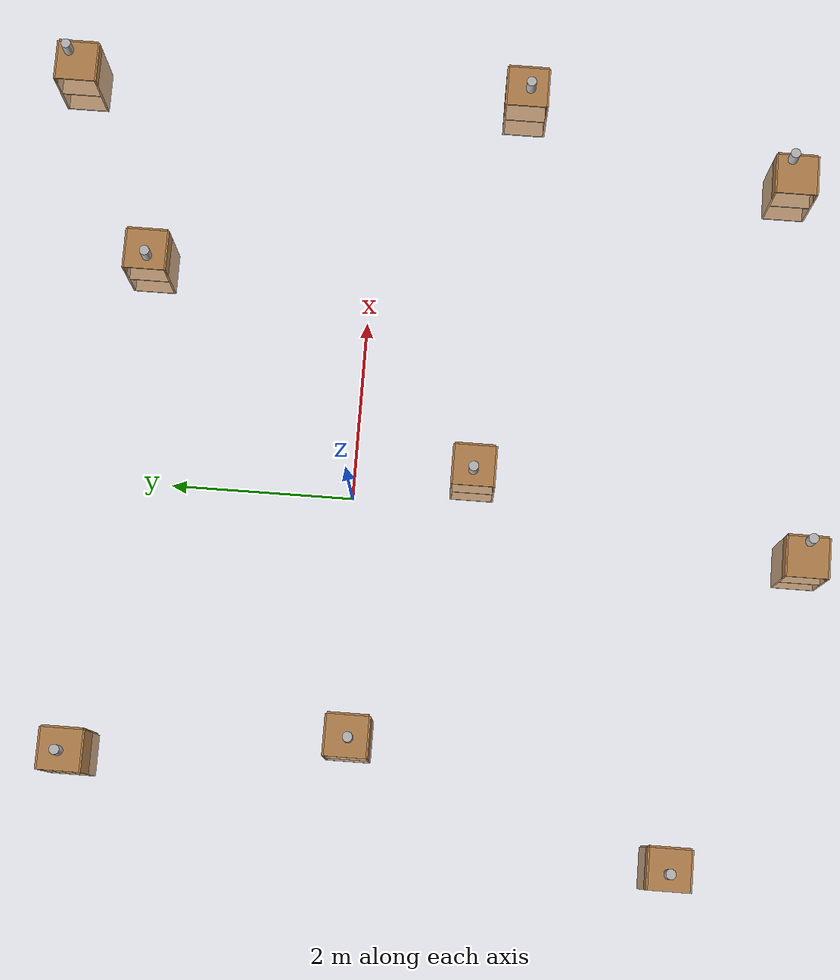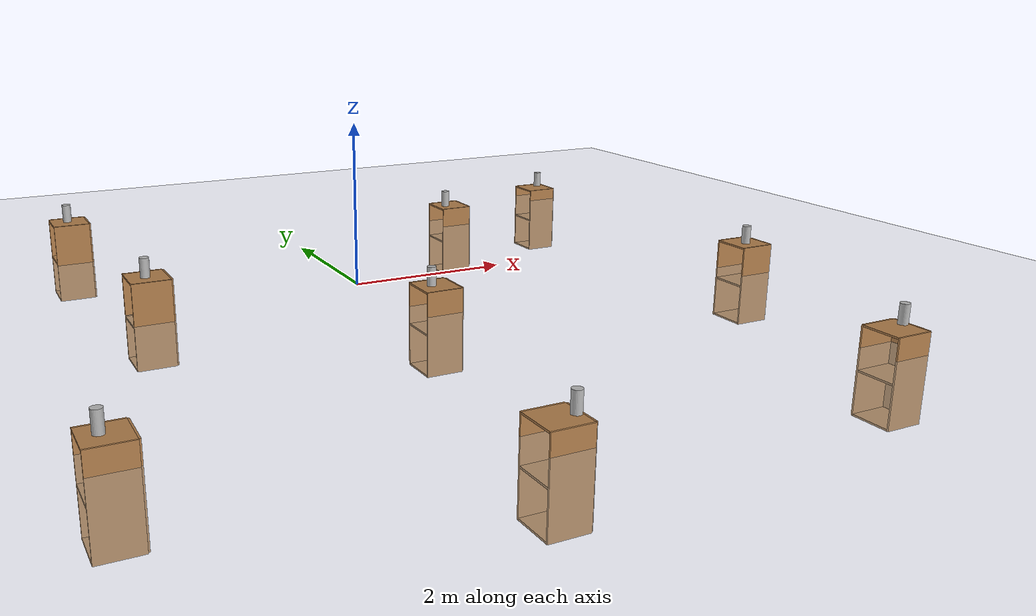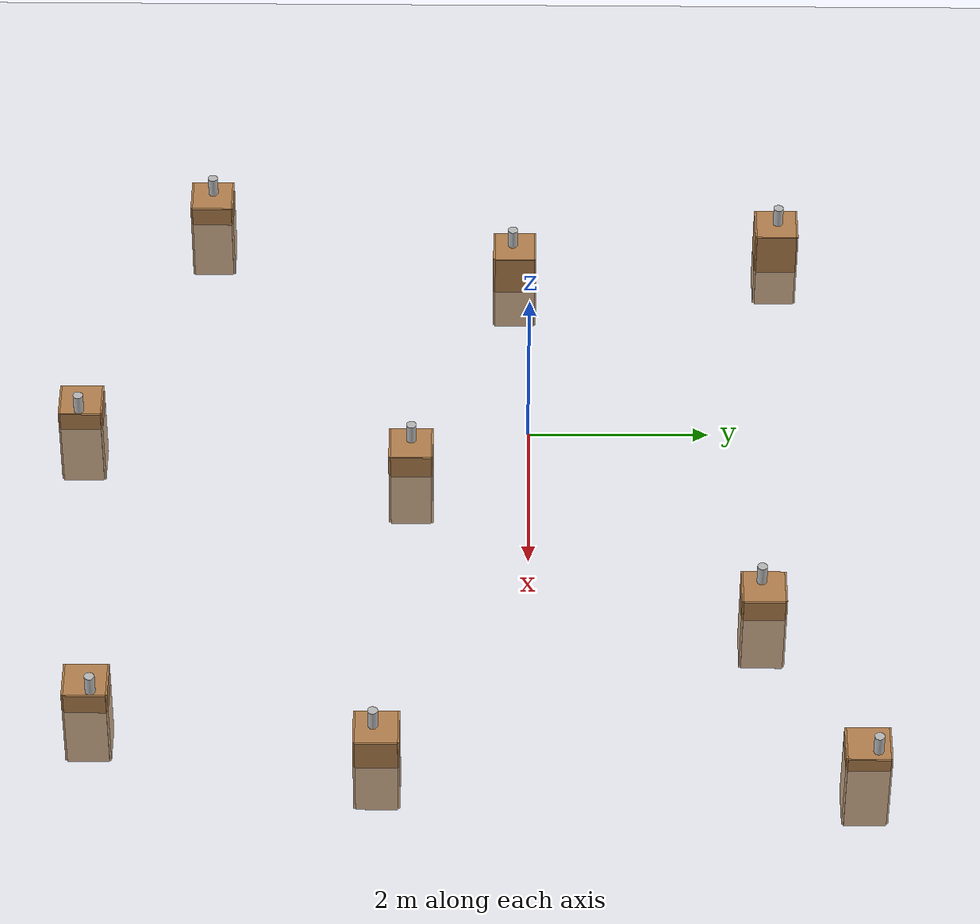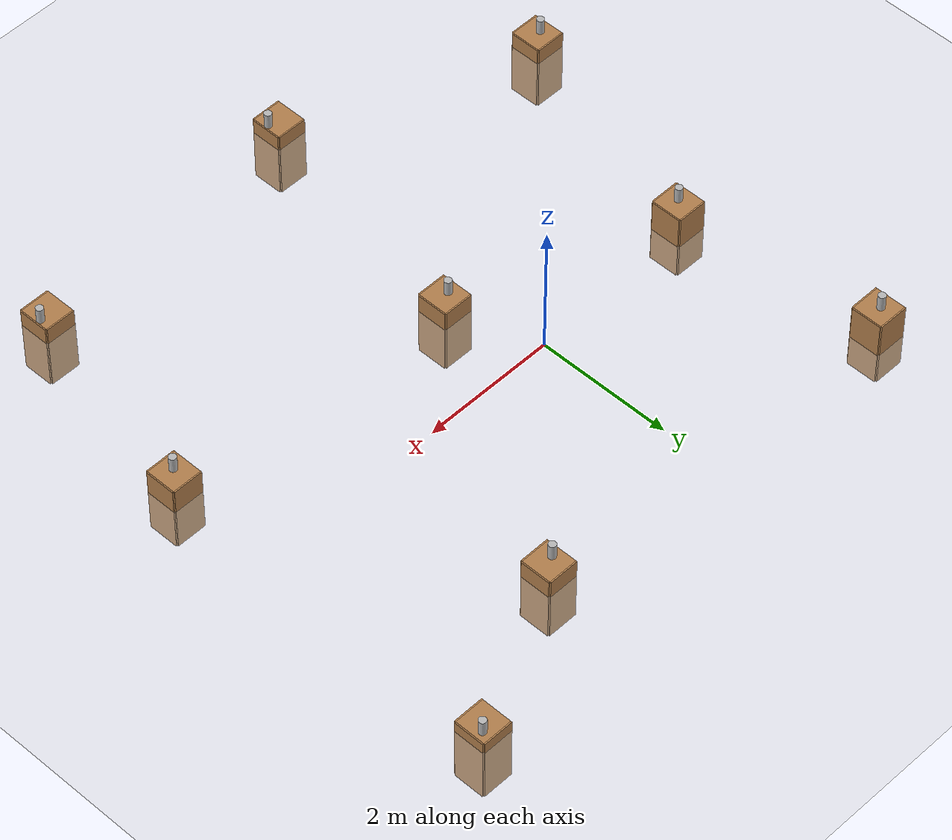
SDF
<sdf version="1.6">
 <world name="default">
  <light name="sun" type="directional">
   <pose>0 0 10 0 -0 0</pose>
   <diffuse>0.8 0.8 0.8 1</diffuse>
   <specular>0.2 0.2 0.2 1</specular>
   <attenuation>
    <range>1000</range>
    <constant>0.9</constant>
    <linear>0.01</linear>
    <quadratic>0.001</quadratic>
   </attenuation>
   <direction>-0.5 0.1 -0.9</direction>
  </light>
  <model name="ground_plane">
   <static>1</static>
   <link name="link">
    <collision name="collision">
     <geometry><plane><normal>0 0 1</normal><size>100 100</size></plane></geometry>
     <surface>
      <contact><collide_bitmask>65535</collide_bitmask></contact>
      <friction><ode><mu>100</mu><mu2>50</mu2></ode></friction>
     </surface>
    </collision>
    <visual name="visual">
     <cast_shadows>0</cast_shadows>
     <geometry><plane><normal>0 0 1</normal><size>100 100</size></plane></geometry>
     <material>
      <script><uri>file://media/materials/scripts/gazebo.material</uri><name>Gazebo/Grey</name></script>
     </material>
    </visual>
   </link>
  </model>
  <gravity>0 0 -9.8</gravity>
  <magnetic_field>6e-06 2.3e-05 -4.2e-05</magnetic_field>
  <atmosphere type="adiabatic"/>
  <physics name="default_physics" default="0" type="ode">
   <max_step_size>0.001</max_step_size>
   <real_time_factor>1</real_time_factor>
   <real_time_update_rate>1000</real_time_update_rate>
  </physics>
  <scene><ambient>0.4 0.4 0.4 1</ambient><background>0.7 0.7 0.7 1</background><shadows>1</shadows></scene>
  <audio><device>default</device></audio>
  <spherical_coordinates>
   <surface_model>EARTH_WGS84</surface_model>
   <latitude_deg>0</latitude_deg>
   <longitude_deg>0</longitude_deg>
   <elevation>0</elevation>
   <heading_deg>0</heading_deg>
  </spherical_coordinates>
  <model name="cabinet">
   <static>1</static>
   <link name="cabinet_bottom_plate">
    <inertial>
     <pose>0 0 -1 0 -0 0</pose>
     <inertia><ixx>2.05</ixx><ixy>0</ixy><ixz>0</ixz><iyy>2.05</iyy><iyz>0</iyz><izz>2.05</izz></inertia>
     <mass>25</mass>
    </inertial>
    <collision name="cabinet_bottom_plate_geom">
     <pose>0 0 0.01 0 -0 0</pose>
     <geometry><box><size>0.45 0.45 0.02</size></box></geometry>
    </collision>
    <visual name="cabinet_bottom_plate_geom_visual">
     <pose>0 0 0.01 0 -0 0</pose>
     <geometry><box><size>0.45 0.45 0.02</size></box></geometry>
     <material>
      <script><uri>file://media/materials/scripts/gazebo.material</uri><name>Gazebo/Wood</name></script>
     </material>
    </visual>
    <collision name="cabinet_bottom_plate_geom_cabinet_back_plate">
     <pose>0.235 0 0.51 0 -0 0</pose>
     <geometry><box><size>0.02 0.45 1.02</size></box></geometry>
    </collision>
    <visual name="cabinet_bottom_plate_geom_cabinet_back_plate_visual">
     <pose>0.235 0 0.51 0 -0 0</pose>
     <geometry><box><size>0.02 0.45 1.02</size></box></geometry>
     <material>
      <script><uri>file://media/materials/scripts/gazebo.material</uri><name>Gazebo/Wood</name></script>
     </material>
    </visual>
    <collision name="cabinet_bottom_plate_geom_cabinet_left_plate">
     <pose>0 0.235 0.51 0 -0 0</pose>
     <geometry><box><size>0.45 0.02 1.02</size></box></geometry>
    </collision>
    <visual name="cabinet_bottom_plate_geom_cabinet_left_plate_visual">
     <pose>0 0.235 0.51 0 -0 0</pose>
     <geometry><box><size>0.45 0.02 1.02</size></box></geometry>
     <material>
      <script><uri>file://media/materials/scripts/gazebo.material</uri><name>Gazebo/Wood</name></script>
     </material>
    </visual>
    <collision name="cabinet_bottom_plate_geom_cabinet_middle_plate">
     <pose>0 0 0.51 0 -0 0</pose>
     <geometry><box><size>0.45 0.45 0.02</size></box></geometry>
    </collision>
    <visual name="cabinet_bottom_plate_geom_cabinet_middle_plate_visual">
     <pose>0 0 0.51 0 -0 0</pose>
     <geometry><box><size>0.45 0.45 0.02</size></box></geometry>
     <material>
      <script><uri>file://media/materials/scripts/gazebo.material</uri><name>Gazebo/Wood</name></script>
     </material>
    </visual>
    <collision name="cabinet_bottom_plate_geom_cabinet_right_plate">
     <pose>0 -0.235 0.51 0 -0 0</pose>
     <geometry><box><size>0.45 0.02 1.02</size></box></geometry>
    </collision>
    <visual name="cabinet_bottom_plate_geom_cabinet_right_plate_visual">
     <pose>0 -0.235 0.51 0 -0 0</pose>
     <geometry><box><size>0.45 0.02 1.02</size></box></geometry>
     <material>
      <script><uri>file://media/materials/scripts/gazebo.material</uri><name>Gazebo/Wood</name></script>
     </material>
    </visual>
    <collision name="cabinet_bottom_plate_geom_cabinet_top_plate">
     <pose>0 0 1.01 0 -0 0</pose>
     <geometry><box><size>0.45 0.45 0.02</size></box></geometry>
    </collision>
    <visual name="cabinet_bottom_plate_geom_cabinet_top_plate_visual">
     <pose>0 0 1.01 0 -0 0</pose>
     <geometry><box><size>0.45 0.45 0.02</size></box></geometry>
     <material>
      <script><uri>file://media/materials/scripts/gazebo.material</uri><name>Gazebo/Wood</name></script>
     </material>
    </visual>
   </link>
   <pose>0.438157 -1.30222 -0.742347 0 -0 0</pose>
  </model>
  <model name="cabinet_0">
   <static>1</static>
   <link name="cabinet_bottom_plate">
    <inertial>
     <pose>0 0 -1 0 -0 0</pose>
     <inertia><ixx>2.05</ixx><ixy>0</ixy><ixz>0</ixz><iyy>2.05</iyy><iyz>0</iyz><izz>2.05</izz></inertia>
     <mass>25</mass>
    </inertial>
    <collision name="cabinet_bottom_plate_geom">
     <pose>0 0 0.01 0 -0 0</pose>
     <geometry><box><size>0.45 0.45 0.02</size></box></geometry>
    </collision>
    <visual name="cabinet_bottom_plate_geom_visual">
     <pose>0 0 0.01 0 -0 0</pose>
     <geometry><box><size>0.45 0.45 0.02</size></box></geometry>
     <material>
      <script><uri>file://media/materials/scripts/gazebo.material</uri><name>Gazebo/Wood</name></script>
     </material>
    </visual>
    <collision name="cabinet_bottom_plate_geom_cabinet_back_plate">
     <pose>0.235 0 0.51 0 -0 0</pose>
     <geometry><box><size>0.02 0.45 1.02</size></box></geometry>
    </collision>
    <visual name="cabinet_bottom_plate_geom_cabinet_back_plate_visual">
     <pose>0.235 0 0.51 0 -0 0</pose>
     <geometry><box><size>0.02 0.45 1.02</size></box></geometry>
     <material>
      <script><uri>file://media/materials/scripts/gazebo.material</uri><name>Gazebo/Wood</name></script>
     </material>
    </visual>
    <collision name="cabinet_bottom_plate_geom_cabinet_left_plate">
     <pose>0 0.235 0.51 0 -0 0</pose>
     <geometry><box><size>0.45 0.02 1.02</size></box></geometry>
    </collision>
    <visual name="cabinet_bottom_plate_geom_cabinet_left_plate_visual">
     <pose>0 0.235 0.51 0 -0 0</pose>
     <geometry><box><size>0.45 0.02 1.02</size></box></geometry>
     <material>
      <script><uri>file://media/materials/scripts/gazebo.material</uri><name>Gazebo/Wood</name></script>
     </material>
    </visual>
    <collision name="cabinet_bottom_plate_geom_cabinet_middle_plate">
     <pose>0 0 0.51 0 -0 0</pose>
     <geometry><box><size>0.45 0.45 0.02</size></box></geometry>
    </collision>
    <visual name="cabinet_bottom_plate_geom_cabinet_middle_plate_visual">
     <pose>0 0 0.51 0 -0 0</pose>
     <geometry><box><size>0.45 0.45 0.02</size></box></geometry>
     <material>
      <script><uri>file://media/materials/scripts/gazebo.material</uri><name>Gazebo/Wood</name></script>
     </material>
    </visual>
    <collision name="cabinet_bottom_plate_geom_cabinet_right_plate">
     <pose>0 -0.235 0.51 0 -0 0</pose>
     <geometry><box><size>0.45 0.02 1.02</size></box></geometry>
    </collision>
    <visual name="cabinet_bottom_plate_geom_cabinet_right_plate_visual">
     <pose>0 -0.235 0.51 0 -0 0</pose>
     <geometry><box><size>0.45 0.02 1.02</size></box></geometry>
     <material>
      <script><uri>file://media/materials/scripts/gazebo.material</uri><name>Gazebo/Wood</name></script>
     </material>
    </visual>
    <collision name="cabinet_bottom_plate_geom_cabinet_top_plate">
     <pose>0 0 1.01 0 -0 0</pose>
     <geometry><box><size>0.45 0.45 0.02</size></box></geometry>
    </collision>
    <visual name="cabinet_bottom_plate_geom_cabinet_top_plate_visual">
     <pose>0 0 1.01 0 -0 0</pose>
     <geometry><box><size>0.45 0.45 0.02</size></box></geometry>
     <material>
      <script><uri>file://media/materials/scripts/gazebo.material</uri><name>Gazebo/Wood</name></script>
     </material>
    </visual>
   </link>
   <pose>-3.74569 -3.68274 -0.792957 0 -0 0</pose>
  </model>
  <model name="cabinet_1">
   <static>1</static>
   <link name="cabinet_bottom_plate">
    <inertial>
     <pose>0 0 -1 0 -0 0</pose>
     <inertia><ixx>2.05</ixx><ixy>0</ixy><ixz>0</ixz><iyy>2.05</iyy><iyz>0</iyz><izz>2.05</izz></inertia>
     <mass>25</mass>
    </inertial>
    <collision name="cabinet_bottom_plate_geom">
     <pose>0 0 0.01 0 -0 0</pose>
     <geometry><box><size>0.45 0.45 0.02</size></box></geometry>
    </collision>
    <visual name="cabinet_bottom_plate_geom_visual">
     <pose>0 0 0.01 0 -0 0</pose>
     <geometry><box><size>0.45 0.45 0.02</size></box></geometry>
     <material>
      <script><uri>file://media/materials/scripts/gazebo.material</uri><name>Gazebo/Wood</name></script>
     </material>
    </visual>
    <collision name="cabinet_bottom_plate_geom_cabinet_back_plate">
     <pose>0.235 0 0.51 0 -0 0</pose>
     <geometry><box><size>0.02 0.45 1.02</size></box></geometry>
    </collision>
    <visual name="cabinet_bottom_plate_geom_cabinet_back_plate_visual">
     <pose>0.235 0 0.51 0 -0 0</pose>
     <geometry><box><size>0.02 0.45 1.02</size></box></geometry>
     <material>
      <script><uri>file://media/materials/scripts/gazebo.material</uri><name>Gazebo/Wood</name></script>
     </material>
    </visual>
    <collision name="cabinet_bottom_plate_geom_cabinet_left_plate">
     <pose>0 0.235 0.51 0 -0 0</pose>
     <geometry><box><size>0.45 0.02 1.02</size></box></geometry>
    </collision>
    <visual name="cabinet_bottom_plate_geom_cabinet_left_plate_visual">
     <pose>0 0.235 0.51 0 -0 0</pose>
     <geometry><box><size>0.45 0.02 1.02</size></box></geometry>
     <material>
      <script><uri>file://media/materials/scripts/gazebo.material</uri><name>Gazebo/Wood</name></script>
     </material>
    </visual>
    <collision name="cabinet_bottom_plate_geom_cabinet_middle_plate">
     <pose>0 0 0.51 0 -0 0</pose>
     <geometry><box><size>0.45 0.45 0.02</size></box></geometry>
    </collision>
    <visual name="cabinet_bottom_plate_geom_cabinet_middle_plate_visual">
     <pose>0 0 0.51 0 -0 0</pose>
     <geometry><box><size>0.45 0.45 0.02</size></box></geometry>
     <material>
      <script><uri>file://media/materials/scripts/gazebo.material</uri><name>Gazebo/Wood</name></script>
     </material>
    </visual>
    <collision name="cabinet_bottom_plate_geom_cabinet_right_plate">
     <pose>0 -0.235 0.51 0 -0 0</pose>
     <geometry><box><size>0.45 0.02 1.02</size></box></geometry>
    </collision>
    <visual name="cabinet_bottom_plate_geom_cabinet_right_plate_visual">
     <pose>0 -0.235 0.51 0 -0 0</pose>
     <geometry><box><size>0.45 0.02 1.02</size></box></geometry>
     <material>
      <script><uri>file://media/materials/scripts/gazebo.material</uri><name>Gazebo/Wood</name></script>
     </material>
    </visual>
    <collision name="cabinet_bottom_plate_geom_cabinet_top_plate">
     <pose>0 0 1.01 0 -0 0</pose>
     <geometry><box><size>0.45 0.45 0.02</size></box></geometry>
    </collision>
    <visual name="cabinet_bottom_plate_geom_cabinet_top_plate_visual">
     <pose>0 0 1.01 0 -0 0</pose>
     <geometry><box><size>0.45 0.45 0.02</size></box></geometry>
     <material>
      <script><uri>file://media/materials/scripts/gazebo.material</uri><name>Gazebo/Wood</name></script>
     </material>
    </visual>
   </link>
   <pose>4.7989 3.5592 -0.86444 0 -0 0</pose>
  </model>
  <model name="cabinet_2">
   <static>1</static>
   <link name="cabinet_bottom_plate">
    <inertial>
     <pose>0 0 -1 0 -0 0</pose>
     <inertia><ixx>2.05</ixx><ixy>0</ixy><ixz>0</ixz><iyy>2.05</iyy><iyz>0</iyz><izz>2.05</izz></inertia>
     <mass>25</mass>
    </inertial>
    <collision name="cabinet_bottom_plate_geom">
     <pose>0 0 0.01 0 -0 0</pose>
     <geometry><box><size>0.45 0.45 0.02</size></box></geometry>
    </collision>
    <visual name="cabinet_bottom_plate_geom_visual">
     <pose>0 0 0.01 0 -0 0</pose>
     <geometry><box><size>0.45 0.45 0.02</size></box></geometry>
     <material>
      <script><uri>file://media/materials/scripts/gazebo.material</uri><name>Gazebo/Wood</name></script>
     </material>
    </visual>
    <collision name="cabinet_bottom_plate_geom_cabinet_back_plate">
     <pose>0.235 0 0.51 0 -0 0</pose>
     <geometry><box><size>0.02 0.45 1.02</size></box></geometry>
    </collision>
    <visual name="cabinet_bottom_plate_geom_cabinet_back_plate_visual">
     <pose>0.235 0 0.51 0 -0 0</pose>
     <geometry><box><size>0.02 0.45 1.02</size></box></geometry>
     <material>
      <script><uri>file://media/materials/scripts/gazebo.material</uri><name>Gazebo/Wood</name></script>
     </material>
    </visual>
    <collision name="cabinet_bottom_plate_geom_cabinet_left_plate">
     <pose>0 0.235 0.51 0 -0 0</pose>
     <geometry><box><size>0.45 0.02 1.02</size></box></geometry>
    </collision>
    <visual name="cabinet_bottom_plate_geom_cabinet_left_plate_visual">
     <pose>0 0.235 0.51 0 -0 0</pose>
     <geometry><box><size>0.45 0.02 1.02</size></box></geometry>
     <material>
      <script><uri>file://media/materials/scripts/gazebo.material</uri><name>Gazebo/Wood</name></script>
     </material>
    </visual>
    <collision name="cabinet_bottom_plate_geom_cabinet_middle_plate">
     <pose>0 0 0.51 0 -0 0</pose>
     <geometry><box><size>0.45 0.45 0.02</size></box></geometry>
    </collision>
    <visual name="cabinet_bottom_plate_geom_cabinet_middle_plate_visual">
     <pose>0 0 0.51 0 -0 0</pose>
     <geometry><box><size>0.45 0.45 0.02</size></box></geometry>
     <material>
      <script><uri>file://media/materials/scripts/gazebo.material</uri><name>Gazebo/Wood</name></script>
     </material>
    </visual>
    <collision name="cabinet_bottom_plate_geom_cabinet_right_plate">
     <pose>0 -0.235 0.51 0 -0 0</pose>
     <geometry><box><size>0.45 0.02 1.02</size></box></geometry>
    </collision>
    <visual name="cabinet_bottom_plate_geom_cabinet_right_plate_visual">
     <pose>0 -0.235 0.51 0 -0 0</pose>
     <geometry><box><size>0.45 0.02 1.02</size></box></geometry>
     <material>
      <script><uri>file://media/materials/scripts/gazebo.material</uri><name>Gazebo/Wood</name></script>
     </material>
    </visual>
    <collision name="cabinet_bottom_plate_geom_cabinet_top_plate">
     <pose>0 0 1.01 0 -0 0</pose>
     <geometry><box><size>0.45 0.45 0.02</size></box></geometry>
    </collision>
    <visual name="cabinet_bottom_plate_geom_cabinet_top_plate_visual">
     <pose>0 0 1.01 0 -0 0</pose>
     <geometry><box><size>0.45 0.45 0.02</size></box></geometry>
     <material>
      <script><uri>file://media/materials/scripts/gazebo.material</uri><name>Gazebo/Wood</name></script>
     </material>
    </visual>
   </link>
   <pose>4.801 -1.59375 -0.662536 0 -0 0</pose>
  </model>
  <model name="cabinet_3">
   <static>1</static>
   <link name="cabinet_bottom_plate">
    <inertial>
     <pose>0 0 -1 0 -0 0</pose>
     <inertia><ixx>2.05</ixx><ixy>0</ixy><ixz>0</ixz><iyy>2.05</iyy><iyz>0</iyz><izz>2.05</izz></inertia>
     <mass>25</mass>
    </inertial>
    <collision name="cabinet_bottom_plate_geom">
     <pose>0 0 0.01 0 -0 0</pose>
     <geometry><box><size>0.45 0.45 0.02</size></box></geometry>
    </collision>
    <visual name="cabinet_bottom_plate_geom_visual">
     <pose>0 0 0.01 0 -0 0</pose>
     <geometry><box><size>0.45 0.45 0.02</size></box></geometry>
     <material>
      <script><uri>file://media/materials/scripts/gazebo.material</uri><name>Gazebo/Wood</name></script>
     </material>
    </visual>
    <collision name="cabinet_bottom_plate_geom_cabinet_back_plate">
     <pose>0.235 0 0.51 0 -0 0</pose>
     <geometry><box><size>0.02 0.45 1.02</size></box></geometry>
    </collision>
    <visual name="cabinet_bottom_plate_geom_cabinet_back_plate_visual">
     <pose>0.235 0 0.51 0 -0 0</pose>
     <geometry><box><size>0.02 0.45 1.02</size></box></geometry>
     <material>
      <script><uri>file://media/materials/scripts/gazebo.material</uri><name>Gazebo/Wood</name></script>
     </material>
    </visual>
    <collision name="cabinet_bottom_plate_geom_cabinet_left_plate">
     <pose>0 0.235 0.51 0 -0 0</pose>
     <geometry><box><size>0.45 0.02 1.02</size></box></geometry>
    </collision>
    <visual name="cabinet_bottom_plate_geom_cabinet_left_plate_visual">
     <pose>0 0.235 0.51 0 -0 0</pose>
     <geometry><box><size>0.45 0.02 1.02</size></box></geometry>
     <material>
      <script><uri>file://media/materials/scripts/gazebo.material</uri><name>Gazebo/Wood</name></script>
     </material>
    </visual>
    <collision name="cabinet_bottom_plate_geom_cabinet_middle_plate">
     <pose>0 0 0.51 0 -0 0</pose>
     <geometry><box><size>0.45 0.45 0.02</size></box></geometry>
    </collision>
    <visual name="cabinet_bottom_plate_geom_cabinet_middle_plate_visual">
     <pose>0 0 0.51 0 -0 0</pose>
     <geometry><box><size>0.45 0.45 0.02</size></box></geometry>
     <material>
      <script><uri>file://media/materials/scripts/gazebo.material</uri><name>Gazebo/Wood</name></script>
     </material>
    </visual>
    <collision name="cabinet_bottom_plate_geom_cabinet_right_plate">
     <pose>0 -0.235 0.51 0 -0 0</pose>
     <geometry><box><size>0.45 0.02 1.02</size></box></geometry>
    </collision>
    <visual name="cabinet_bottom_plate_geom_cabinet_right_plate_visual">
     <pose>0 -0.235 0.51 0 -0 0</pose>
     <geometry><box><size>0.45 0.02 1.02</size></box></geometry>
     <material>
      <script><uri>file://media/materials/scripts/gazebo.material</uri><name>Gazebo/Wood</name></script>
     </material>
    </visual>
    <collision name="cabinet_bottom_plate_geom_cabinet_top_plate">
     <pose>0 0 1.01 0 -0 0</pose>
     <geometry><box><size>0.45 0.45 0.02</size></box></geometry>
    </collision>
    <visual name="cabinet_bottom_plate_geom_cabinet_top_plate_visual">
     <pose>0 0 1.01 0 -0 0</pose>
     <geometry><box><size>0.45 0.45 0.02</size></box></geometry>
     <material>
      <script><uri>file://media/materials/scripts/gazebo.material</uri><name>Gazebo/Wood</name></script>
     </material>
    </visual>
   </link>
   <pose>2.61198 2.53298 -0.760613 0 -0 0</pose>
  </model>
  <model name="cabinet_4">
   <static>1</static>
   <link name="cabinet_bottom_plate">
    <inertial>
     <pose>0 0 -1 0 -0 0</pose>
     <inertia><ixx>2.05</ixx><ixy>0</ixy><ixz>0</ixz><iyy>2.05</iyy><iyz>0</iyz><izz>2.05</izz></inertia>
     <mass>25</mass>
    </inertial>
    <collision name="cabinet_bottom_plate_geom">
     <pose>0 0 0.01 0 -0 0</pose>
     <geometry><box><size>0.45 0.45 0.02</size></box></geometry>
    </collision>
    <visual name="cabinet_bottom_plate_geom_visual">
     <pose>0 0 0.01 0 -0 0</pose>
     <geometry><box><size>0.45 0.45 0.02</size></box></geometry>
     <material>
      <script><uri>file://media/materials/scripts/gazebo.material</uri><name>Gazebo/Wood</name></script>
     </material>
    </visual>
    <collision name="cabinet_bottom_plate_geom_cabinet_back_plate">
     <pose>0.235 0 0.51 0 -0 0</pose>
     <geometry><box><size>0.02 0.45 1.02</size></box></geometry>
    </collision>
    <visual name="cabinet_bottom_plate_geom_cabinet_back_plate_visual">
     <pose>0.235 0 0.51 0 -0 0</pose>
     <geometry><box><size>0.02 0.45 1.02</size></box></geometry>
     <material>
      <script><uri>file://media/materials/scripts/gazebo.material</uri><name>Gazebo/Wood</name></script>
     </material>
    </visual>
    <collision name="cabinet_bottom_plate_geom_cabinet_left_plate">
     <pose>0 0.235 0.51 0 -0 0</pose>
     <geometry><box><size>0.45 0.02 1.02</size></box></geometry>
    </collision>
    <visual name="cabinet_bottom_plate_geom_cabinet_left_plate_visual">
     <pose>0 0.235 0.51 0 -0 0</pose>
     <geometry><box><size>0.45 0.02 1.02</size></box></geometry>
     <material>
      <script><uri>file://media/materials/scripts/gazebo.material</uri><name>Gazebo/Wood</name></script>
     </material>
    </visual>
    <collision name="cabinet_bottom_plate_geom_cabinet_middle_plate">
     <pose>0 0 0.51 0 -0 0</pose>
     <geometry><box><size>0.45 0.45 0.02</size></box></geometry>
    </collision>
    <visual name="cabinet_bottom_plate_geom_cabinet_middle_plate_visual">
     <pose>0 0 0.51 0 -0 0</pose>
     <geometry><box><size>0.45 0.45 0.02</size></box></geometry>
     <material>
      <script><uri>file://media/materials/scripts/gazebo.material</uri><name>Gazebo/Wood</name></script>
     </material>
    </visual>
    <collision name="cabinet_bottom_plate_geom_cabinet_right_plate">
     <pose>0 -0.235 0.51 0 -0 0</pose>
     <geometry><box><size>0.45 0.02 1.02</size></box></geometry>
    </collision>
    <visual name="cabinet_bottom_plate_geom_cabinet_right_plate_visual">
     <pose>0 -0.235 0.51 0 -0 0</pose>
     <geometry><box><size>0.45 0.02 1.02</size></box></geometry>
     <material>
      <script><uri>file://media/materials/scripts/gazebo.material</uri><name>Gazebo/Wood</name></script>
     </material>
    </visual>
    <collision name="cabinet_bottom_plate_geom_cabinet_top_plate">
     <pose>0 0 1.01 0 -0 0</pose>
     <geometry><box><size>0.45 0.45 0.02</size></box></geometry>
    </collision>
    <visual name="cabinet_bottom_plate_geom_cabinet_top_plate_visual">
     <pose>0 0 1.01 0 -0 0</pose>
     <geometry><box><size>0.45 0.45 0.02</size></box></geometry>
     <material>
      <script><uri>file://media/materials/scripts/gazebo.material</uri><name>Gazebo/Wood</name></script>
     </material>
    </visual>
   </link>
   <pose>-2.98296 2.84203 -0.507047 0 -0 0</pose>
  </model>
  <model name="cabinet_5">
   <static>1</static>
   <link name="cabinet_bottom_plate">
    <inertial>
     <pose>0 0 -1 0 -0 0</pose>
     <inertia><ixx>2.05</ixx><ixy>0</ixy><ixz>0</ixz><iyy>2.05</iyy><iyz>0</iyz><izz>2.05</izz></inertia>
     <mass>25</mass>
    </inertial>
    <collision name="cabinet_bottom_plate_geom">
     <pose>0 0 0.01 0 -0 0</pose>
     <geometry><box><size>0.45 0.45 0.02</size></box></geometry>
    </collision>
    <visual name="cabinet_bottom_plate_geom_visual">
     <pose>0 0 0.01 0 -0 0</pose>
     <geometry><box><size>0.45 0.45 0.02</size></box></geometry>
     <material>
      <script><uri>file://media/materials/scripts/gazebo.material</uri><name>Gazebo/Wood</name></script>
     </material>
    </visual>
    <collision name="cabinet_bottom_plate_geom_cabinet_back_plate">
     <pose>0.235 0 0.51 0 -0 0</pose>
     <geometry><box><size>0.02 0.45 1.02</size></box></geometry>
    </collision>
    <visual name="cabinet_bottom_plate_geom_cabinet_back_plate_visual">
     <pose>0.235 0 0.51 0 -0 0</pose>
     <geometry><box><size>0.02 0.45 1.02</size></box></geometry>
     <material>
      <script><uri>file://media/materials/scripts/gazebo.material</uri><name>Gazebo/Wood</name></script>
     </material>
    </visual>
    <collision name="cabinet_bottom_plate_geom_cabinet_left_plate">
     <pose>0 0.235 0.51 0 -0 0</pose>
     <geometry><box><size>0.45 0.02 1.02</size></box></geometry>
    </collision>
    <visual name="cabinet_bottom_plate_geom_cabinet_left_plate_visual">
     <pose>0 0.235 0.51 0 -0 0</pose>
     <geometry><box><size>0.45 0.02 1.02</size></box></geometry>
     <material>
      <script><uri>file://media/materials/scripts/gazebo.material</uri><name>Gazebo/Wood</name></script>
     </material>
    </visual>
    <collision name="cabinet_bottom_plate_geom_cabinet_middle_plate">
     <pose>0 0 0.51 0 -0 0</pose>
     <geometry><box><size>0.45 0.45 0.02</size></box></geometry>
    </collision>
    <visual name="cabinet_bottom_plate_geom_cabinet_middle_plate_visual">
     <pose>0 0 0.51 0 -0 0</pose>
     <geometry><box><size>0.45 0.45 0.02</size></box></geometry>
     <material>
      <script><uri>file://media/materials/scripts/gazebo.material</uri><name>Gazebo/Wood</name></script>
     </material>
    </visual>
    <collision name="cabinet_bottom_plate_geom_cabinet_right_plate">
     <pose>0 -0.235 0.51 0 -0 0</pose>
     <geometry><box><size>0.45 0.02 1.02</size></box></geometry>
    </collision>
    <visual name="cabinet_bottom_plate_geom_cabinet_right_plate_visual">
     <pose>0 -0.235 0.51 0 -0 0</pose>
     <geometry><box><size>0.45 0.02 1.02</size></box></geometry>
     <material>
      <script><uri>file://media/materials/scripts/gazebo.material</uri><name>Gazebo/Wood</name></script>
     </material>
    </visual>
    <collision name="cabinet_bottom_plate_geom_cabinet_top_plate">
     <pose>0 0 1.01 0 -0 0</pose>
     <geometry><box><size>0.45 0.45 0.02</size></box></geometry>
    </collision>
    <visual name="cabinet_bottom_plate_geom_cabinet_top_plate_visual">
     <pose>0 0 1.01 0 -0 0</pose>
     <geometry><box><size>0.45 0.45 0.02</size></box></geometry>
     <material>
      <script><uri>file://media/materials/scripts/gazebo.material</uri><name>Gazebo/Wood</name></script>
     </material>
    </visual>
   </link>
   <pose>4.03835 -4.68772 -0.779558 0 -0 0</pose>
  </model>
  <model name="cabinet_6">
   <static>1</static>
   <link name="cabinet_bottom_plate">
    <inertial>
     <pose>0 0 -1 0 -0 0</pose>
     <inertia><ixx>2.05</ixx><ixy>0</ixy><ixz>0</ixz><iyy>2.05</iyy><iyz>0</iyz><izz>2.05</izz></inertia>
     <mass>25</mass>
    </inertial>
    <collision name="cabinet_bottom_plate_geom">
     <pose>0 0 0.01 0 -0 0</pose>
     <geometry><box><size>0.45 0.45 0.02</size></box></geometry>
    </collision>
    <visual name="cabinet_bottom_plate_geom_visual">
     <pose>0 0 0.01 0 -0 0</pose>
     <geometry><box><size>0.45 0.45 0.02</size></box></geometry>
     <material>
      <script><uri>file://media/materials/scripts/gazebo.material</uri><name>Gazebo/Wood</name></script>
     </material>
    </visual>
    <collision name="cabinet_bottom_plate_geom_cabinet_back_plate">
     <pose>0.235 0 0.51 0 -0 0</pose>
     <geometry><box><size>0.02 0.45 1.02</size></box></geometry>
    </collision>
    <visual name="cabinet_bottom_plate_geom_cabinet_back_plate_visual">
     <pose>0.235 0 0.51 0 -0 0</pose>
     <geometry><box><size>0.02 0.45 1.02</size></box></geometry>
     <material>
      <script><uri>file://media/materials/scripts/gazebo.material</uri><name>Gazebo/Wood</name></script>
     </material>
    </visual>
    <collision name="cabinet_bottom_plate_geom_cabinet_left_plate">
     <pose>0 0.235 0.51 0 -0 0</pose>
     <geometry><box><size>0.45 0.02 1.02</size></box></geometry>
    </collision>
    <visual name="cabinet_bottom_plate_geom_cabinet_left_plate_visual">
     <pose>0 0.235 0.51 0 -0 0</pose>
     <geometry><box><size>0.45 0.02 1.02</size></box></geometry>
     <material>
      <script><uri>file://media/materials/scripts/gazebo.material</uri><name>Gazebo/Wood</name></script>
     </material>
    </visual>
    <collision name="cabinet_bottom_plate_geom_cabinet_middle_plate">
     <pose>0 0 0.51 0 -0 0</pose>
     <geometry><box><size>0.45 0.45 0.02</size></box></geometry>
    </collision>
    <visual name="cabinet_bottom_plate_geom_cabinet_middle_plate_visual">
     <pose>0 0 0.51 0 -0 0</pose>
     <geometry><box><size>0.45 0.45 0.02</size></box></geometry>
     <material>
      <script><uri>file://media/materials/scripts/gazebo.material</uri><name>Gazebo/Wood</name></script>
     </material>
    </visual>
    <collision name="cabinet_bottom_plate_geom_cabinet_right_plate">
     <pose>0 -0.235 0.51 0 -0 0</pose>
     <geometry><box><size>0.45 0.02 1.02</size></box></geometry>
    </collision>
    <visual name="cabinet_bottom_plate_geom_cabinet_right_plate_visual">
     <pose>0 -0.235 0.51 0 -0 0</pose>
     <geometry><box><size>0.45 0.02 1.02</size></box></geometry>
     <material>
      <script><uri>file://media/materials/scripts/gazebo.material</uri><name>Gazebo/Wood</name></script>
     </material>
    </visual>
    <collision name="cabinet_bottom_plate_geom_cabinet_top_plate">
     <pose>0 0 1.01 0 -0 0</pose>
     <geometry><box><size>0.45 0.45 0.02</size></box></geometry>
    </collision>
    <visual name="cabinet_bottom_plate_geom_cabinet_top_plate_visual">
     <pose>0 0 1.01 0 -0 0</pose>
     <geometry><box><size>0.45 0.45 0.02</size></box></geometry>
     <material>
      <script><uri>file://media/materials/scripts/gazebo.material</uri><name>Gazebo/Wood</name></script>
     </material>
    </visual>
   </link>
   <pose>-2.61234 -0.161287 -0.542219 0 -0 0</pose>
  </model>
  <model name="cabinet_7">
   <static>1</static>
   <link name="cabinet_bottom_plate">
    <inertial>
     <pose>0 0 -1 0 -0 0</pose>
     <inertia><ixx>2.05</ixx><ixy>0</ixy><ixz>0</ixz><iyy>2.05</iyy><iyz>0</iyz><izz>2.05</izz></inertia>
     <mass>25</mass>
    </inertial>
    <collision name="cabinet_bottom_plate_geom">
     <pose>0 0 0.01 0 -0 0</pose>
     <geometry><box><size>0.45 0.45 0.02</size></box></geometry>
    </collision>
    <visual name="cabinet_bottom_plate_geom_visual">
     <pose>0 0 0.01 0 -0 0</pose>
     <geometry><box><size>0.45 0.45 0.02</size></box></geometry>
     <material>
      <script><uri>file://media/materials/scripts/gazebo.material</uri><name>Gazebo/Wood</name></script>
     </material>
    </visual>
    <collision name="cabinet_bottom_plate_geom_cabinet_back_plate">
     <pose>0.235 0 0.51 0 -0 0</pose>
     <geometry><box><size>0.02 0.45 1.02</size></box></geometry>
    </collision>
    <visual name="cabinet_bottom_plate_geom_cabinet_back_plate_visual">
     <pose>0.235 0 0.51 0 -0 0</pose>
     <geometry><box><size>0.02 0.45 1.02</size></box></geometry>
     <material>
      <script><uri>file://media/materials/scripts/gazebo.material</uri><name>Gazebo/Wood</name></script>
     </material>
    </visual>
    <collision name="cabinet_bottom_plate_geom_cabinet_left_plate">
     <pose>0 0.235 0.51 0 -0 0</pose>
     <geometry><box><size>0.45 0.02 1.02</size></box></geometry>
    </collision>
    <visual name="cabinet_bottom_plate_geom_cabinet_left_plate_visual">
     <pose>0 0.235 0.51 0 -0 0</pose>
     <geometry><box><size>0.45 0.02 1.02</size></box></geometry>
     <material>
      <script><uri>file://media/materials/scripts/gazebo.material</uri><name>Gazebo/Wood</name></script>
     </material>
    </visual>
    <collision name="cabinet_bottom_plate_geom_cabinet_middle_plate">
     <pose>0 0 0.51 0 -0 0</pose>
     <geometry><box><size>0.45 0.45 0.02</size></box></geometry>
    </collision>
    <visual name="cabinet_bottom_plate_geom_cabinet_middle_plate_visual">
     <pose>0 0 0.51 0 -0 0</pose>
     <geometry><box><size>0.45 0.45 0.02</size></box></geometry>
     <material>
      <script><uri>file://media/materials/scripts/gazebo.material</uri><name>Gazebo/Wood</name></script>
     </material>
    </visual>
    <collision name="cabinet_bottom_plate_geom_cabinet_right_plate">
     <pose>0 -0.235 0.51 0 -0 0</pose>
     <geometry><box><size>0.45 0.02 1.02</size></box></geometry>
    </collision>
    <visual name="cabinet_bottom_plate_geom_cabinet_right_plate_visual">
     <pose>0 -0.235 0.51 0 -0 0</pose>
     <geometry><box><size>0.45 0.02 1.02</size></box></geometry>
     <material>
      <script><uri>file://media/materials/scripts/gazebo.material</uri><name>Gazebo/Wood</name></script>
     </material>
    </visual>
    <collision name="cabinet_bottom_plate_geom_cabinet_top_plate">
     <pose>0 0 1.01 0 -0 0</pose>
     <geometry><box><size>0.45 0.45 0.02</size></box></geometry>
    </collision>
    <visual name="cabinet_bottom_plate_geom_cabinet_top_plate_visual">
     <pose>0 0 1.01 0 -0 0</pose>
     <geometry><box><size>0.45 0.45 0.02</size></box></geometry>
     <material>
      <script><uri>file://media/materials/scripts/gazebo.material</uri><name>Gazebo/Wood</name></script>
     </material>
    </visual>
   </link>
   <pose>-0.290347 -5.00037 -0.805567 0 -0 0</pose>
  </model>
  <model name="beer">
   <link name="link">
    <pose>0 0 0.115 0 -0 0</pose>
    <inertial>
     <mass>0.39</mass>
     <inertia><ixx>0.00058</ixx><ixy>0</ixy><ixz>0</ixz><iyy>0.00058</iyy><iyz>0</iyz><izz>0.00019</izz></inertia>
    </inertial>
    <collision name="collision">
     <geometry><cylinder><radius>0.055</radius><length>0.23</length></cylinder></geometry>
    </collision>
    <visual name="visual">
     <geometry><cylinder><radius>0.055</radius><length>0.23</length></cylinder></geometry>
     <material>
      <script>
       <uri>model://beer/materials/scripts</uri>
       <uri>model://beer/materials/textures</uri>
       <name>Beer/Diffuse</name>
      </script>
     </material>
    </visual>
   </link>
   <pose>-0.116437 -5.01521 0.214435 -7e-06 3.4e-05 1.36131</pose>
  </model>
  <model name="beer_0">
   <link name="link">
    <pose>0 0 0.115 0 -0 0</pose>
    <inertial>
     <mass>0.39</mass>
     <inertia><ixx>0.00058</ixx><ixy>0</ixy><ixz>0</ixz><iyy>0.00058</iyy><iyz>0</iyz><izz>0.00019</izz></inertia>
    </inertial>
    <collision name="collision">
     <geometry><cylinder><radius>0.055</radius><length>0.23</length></cylinder></geometry>
    </collision>
    <visual name="visual">
     <geometry><cylinder><radius>0.055</radius><length>0.23</length></cylinder></geometry>
     <material>
      <script>
       <uri>model://beer/materials/scripts</uri>
       <uri>model://beer/materials/textures</uri>
       <name>Beer/Diffuse</name>
      </script>
     </material>
    </visual>
   </link>
   <pose>4.20816 -4.62401 0.240446 5.3e-05 5.1e-05 1.54211</pose>
  </model>
  <model name="beer_1">
   <link name="link">
    <pose>0 0 0.115 0 -0 0</pose>
    <inertial>
     <mass>0.39</mass>
     <inertia><ixx>0.00058</ixx><ixy>0</ixy><ixz>0</ixz><iyy>0.00058</iyy><iyz>0</iyz><izz>0.00019</izz></inertia>
    </inertial>
    <collision name="collision">
     <geometry><cylinder><radius>0.055</radius><length>0.23</length></cylinder></geometry>
    </collision>
    <visual name="visual">
     <geometry><cylinder><radius>0.055</radius><length>0.23</length></cylinder></geometry>
     <material>
      <script>
       <uri>model://beer/materials/scripts</uri>
       <uri>model://beer/materials/textures</uri>
       <name>Beer/Diffuse</name>
      </script>
     </material>
    </visual>
   </link>
   <pose>-3.78929 -3.67363 0.227048 2.5e-05 0.0001 1.86887</pose>
  </model>
  <model name="beer_2">
   <link name="link">
    <pose>0 0 0.115 0 -0 0</pose>
    <inertial>
     <mass>0.39</mass>
     <inertia><ixx>0.00058</ixx><ixy>0</ixy><ixz>0</ixz><iyy>0.00058</iyy><iyz>0</iyz><izz>0.00019</izz></inertia>
    </inertial>
    <collision name="collision">
     <geometry><cylinder><radius>0.055</radius><length>0.23</length></cylinder></geometry>
    </collision>
    <visual name="visual">
     <geometry><cylinder><radius>0.055</radius><length>0.23</length></cylinder></geometry>
     <material>
      <script>
       <uri>model://beer/materials/scripts</uri>
       <uri>model://beer/materials/textures</uri>
       <name>Beer/Diffuse</name>
      </script>
     </material>
    </visual>
   </link>
   <pose>-2.99592 2.86016 0.512954 1.6e-05 -2.1e-05 0.000961</pose>
  </model>
  <model name="beer_3">
   <link name="link">
    <pose>0 0 0.115 0 -0 0</pose>
    <inertial>
     <mass>0.39</mass>
     <inertia><ixx>0.00058</ixx><ixy>0</ixy><ixz>0</ixz><iyy>0.00058</iyy><iyz>0</iyz><izz>0.00019</izz></inertia>
    </inertial>
    <collision name="collision">
     <geometry><cylinder><radius>0.055</radius><length>0.23</length></cylinder></geometry>
    </collision>
    <visual name="visual">
     <geometry><cylinder><radius>0.055</radius><length>0.23</length></cylinder></geometry>
     <material>
      <script>
       <uri>model://beer/materials/scripts</uri>
       <uri>model://beer/materials/textures</uri>
       <name>Beer/Diffuse</name>
      </script>
     </material>
    </visual>
   </link>
   <pose>-2.63155 -0.183656 0.477783 1.3e-05 2.3e-05 0.000206</pose>
  </model>
  <model name="beer_4">
   <link name="link">
    <pose>0 0 0.115 0 -0 0</pose>
    <inertial>
     <mass>0.39</mass>
     <inertia><ixx>0.00058</ixx><ixy>0</ixy><ixz>0</ixz><iyy>0.00058</iyy><iyz>0</iyz><izz>0.00019</izz></inertia>
    </inertial>
    <collision name="collision">
     <geometry><cylinder><radius>0.055</radius><length>0.23</length></cylinder></geometry>
    </collision>
    <visual name="visual">
     <geometry><cylinder><radius>0.055</radius><length>0.23</length></cylinder></geometry>
     <material>
      <script>
       <uri>model://beer/materials/scripts</uri>
       <uri>model://beer/materials/textures</uri>
       <name>Beer/Diffuse</name>
      </script>
     </material>
    </visual>
   </link>
   <pose>0.387493 -1.29791 0.277652 1.3e-05 -2.2e-05 0.00012</pose>
  </model>
  <model name="beer_5">
   <link name="link">
    <pose>0 0 0.115 0 -0 0</pose>
    <inertial>
     <mass>0.39</mass>
     <inertia><ixx>0.00058</ixx><ixy>0</ixy><ixz>0</ixz><iyy>0.00058</iyy><iyz>0</iyz><izz>0.00019</izz></inertia>
    </inertial>
    <collision name="collision">
     <geometry><cylinder><radius>0.055</radius><length>0.23</length></cylinder></geometry>
    </collision>
    <visual name="visual">
     <geometry><cylinder><radius>0.055</radius><length>0.23</length></cylinder></geometry>
     <material>
      <script>
       <uri>model://beer/materials/scripts</uri>
       <uri>model://beer/materials/textures</uri>
       <name>Beer/Diffuse</name>
      </script>
     </material>
    </visual>
   </link>
   <pose>2.5338 2.50874 0.259387 -1e-05 -4e-06 0.000579</pose>
  </model>
  <model name="beer_6">
   <link name="link">
    <pose>0 0 0.115 0 -0 0</pose>
    <inertial>
     <mass>0.39</mass>
     <inertia><ixx>0.00058</ixx><ixy>0</ixy><ixz>0</ixz><iyy>0.00058</iyy><iyz>0</iyz><izz>0.00019</izz></inertia>
    </inertial>
    <collision name="collision">
     <geometry><cylinder><radius>0.055</radius><length>0.23</length></cylinder></geometry>
    </collision>
    <visual name="visual">
     <geometry><cylinder><radius>0.055</radius><length>0.23</length></cylinder></geometry>
     <material>
      <script>
       <uri>model://beer/materials/scripts</uri>
       <uri>model://beer/materials/textures</uri>
       <name>Beer/Diffuse</name>
      </script>
     </material>
    </visual>
   </link>
   <pose>4.78096 -1.62825 0.357465 7e-06 -2.3e-05 -0.000235</pose>
  </model>
  <model name="beer_7">
   <link name="link">
    <pose>0 0 0.115 0 -0 0</pose>
    <inertial>
     <mass>0.39</mass>
     <inertia><ixx>0.00058</ixx><ixy>0</ixy><ixz>0</ixz><iyy>0.00058</iyy><iyz>0</iyz><izz>0.00019</izz></inertia>
    </inertial>
    <collision name="collision">
     <geometry><cylinder><radius>0.055</radius><length>0.23</length></cylinder></geometry>
    </collision>
    <visual name="visual">
     <geometry><cylinder><radius>0.055</radius><length>0.23</length></cylinder></geometry>
     <material>
      <script>
       <uri>model://beer/materials/scripts</uri>
       <uri>model://beer/materials/textures</uri>
       <name>Beer/Diffuse</name>
      </script>
     </material>
    </visual>
   </link>
   <pose>4.91212 3.65696 0.155552 2.4e-05 9e-06 -2.33695</pose>
  </model>
 </world>
</sdf>
